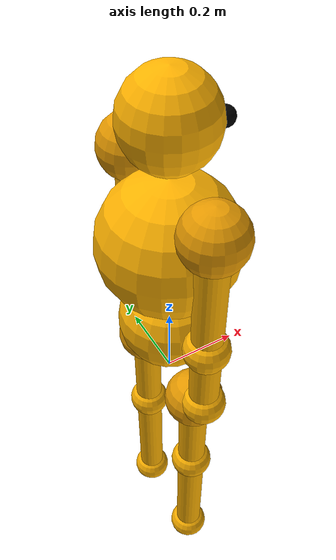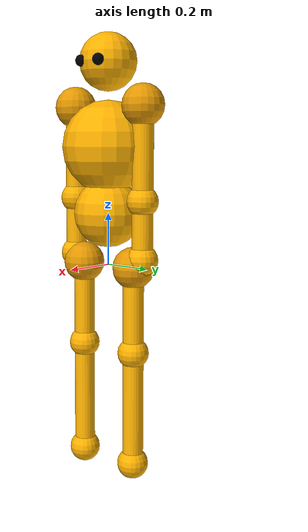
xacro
<?xml version="1.0"?>
<robot xmlns:xacro="http://www.ros.org/wiki/xacro" name="human">

    <!-- User-settable parameters (eg, xacro human-tpl.xacro id:=xyz) -->
    <xacro:property name="id" value="$(arg id)" />
    <xacro:property name="height" value="$(arg height)" />

    <!-- Parameters defaults -->
    <xacro:arg name="id" default="default" />
    <xacro:arg name="height" default="1.65" />

    <!-- human body proportions taken from https://www.thedrawingsource.com/figure-drawing-proportions.html -->
    <xacro:property name="size_unit" value="${height/7.5}" />
    <xacro:property name="head_radius" value="${size_unit/2}" />
    <xacro:property name="neck_length" value="${size_unit * 0.25}" />
    <xacro:property name="neck_shoulder_length" value="${size_unit*0.8}" />
    <xacro:property name="upperarm_length" value="${size_unit*1.6}" />
    <xacro:property name="forearm_length" value="${size_unit}" />
    <xacro:property name="torso_height" value="${size_unit*2.75}" />
    <xacro:property name="waist_length" value="${size_unit*1.2}" />
    <xacro:property name="tight_length" value="${size_unit*1.5}" />
    <xacro:property name="tibia_length" value="${size_unit*2}" />

    <xacro:property name="arm_radius" value="0.04" />

    <!-- Materials -->
    <material name="yellow-skin">
        <color rgba="1 0.7 0 1" />
    </material>

    <material name="yellow-skin-dark">
        <color rgba="0.9 0.6 0 1" />
    </material>

    <material name="black">
        <color rgba="0 0 0 1" />
    </material>

    <link name="body_${id}">
    </link>

    <link name="waist_${id}">
    </link>

    <link name="torso_${id}">
        <visual>
            <geometry>
                <sphere radius="${waist_length/2}"/>
            </geometry>
            <material name="yellow-skin" />
            <origin rpy="0 0 0" xyz="0 0 -${torso_height*2/3}" />
        </visual>
        <visual>
            <geometry>
                <sphere radius="${neck_shoulder_length}"/>
            </geometry>
            <material name="yellow-skin" />
            <origin rpy="0 0 0" xyz="0 0 -${torso_height/4}" />
        </visual>
    </link>

    <joint name="torso_${id}" type="fixed">
        <parent link="waist_${id}"/>
        <child link="torso_${id}"/>
        <origin rpy="0 0 0" xyz="0 0 ${torso_height}" />
    </joint>

    <joint name="waist_${id}" type="revolute">
        <axis xyz="0 1 0" />
        <limit effort="1000" lower="-.2" upper="1." velocity="0.5" />
        <parent link="body_${id}"/>
        <child link="waist_${id}"/>
        <origin rpy="0 0 0" xyz="0 0 0" />
    </joint>

    <link name="head_r_${id}">
    </link>
    <link name="head_y_${id}">
    </link>
    <link name="head_p_${id}">
    </link>

    <link name="head_${id}">
        <visual>
            <geometry>
                <sphere radius="${head_radius}"/>
            </geometry>
            <material name="yellow-skin" />
            <origin rpy="0 0 0" xyz="${-head_radius/2} 0 0" />
        </visual>
        <!-- eyes -->
        <visual>
            <geometry>
                <sphere radius="${head_radius/5}"/>
            </geometry>
            <material name="black" />
            <origin rpy="0 0 0" xyz="${head_radius * .9 - head_radius/2} ${2*head_radius/5} 0" />
        </visual>
        <visual>
            <geometry>
                <sphere radius="${head_radius/5}"/>
            </geometry>
            <material name="black" />
            <origin rpy="0 0 0" xyz="${head_radius * .9 - head_radius/2} -${2*head_radius/5} 0" />
        </visual>
    </link>
    <joint name="head_r_${id}" type="revolute">
        <axis xyz="1 0 0" />
        <limit effort="1000" lower="-1." upper="1." velocity="0.5" />
        <parent link="torso_${id}"/>
        <child link="head_r_${id}"/>
        <origin rpy="0 0 0" xyz="0 0 ${neck_length}" />
    </joint>
    <joint name="head_y_${id}" type="revolute">
        <axis xyz="0 0 1" />
        <limit effort="1000" lower="-1.4" upper="1.4" velocity="0.5" />
        <parent link="head_r_${id}"/>
        <child link="head_y_${id}"/>
        <origin rpy="0 0 0" xyz="0 0 0" />
    </joint>
    <joint name="head_p_${id}" type="revolute">
        <axis xyz="0 -1 0" />
        <limit effort="1000" lower="-1.5" upper="1.5" velocity="0.5" />
        <parent link="head_y_${id}"/>
        <child link="head_p_${id}"/>
        <origin rpy="0 0 0" xyz="0 0 0" />
    </joint>

    <joint name="head_${id}" type="fixed">
        <parent link="head_p_${id}"/>
        <child link="head_${id}"/>
        <origin rpy="0 0 0" xyz="${head_radius/2} 0 ${head_radius}" />
    </joint>

    <xacro:macro name="limb_segment" params="name reflect length parent attachment_origin attachment_rotation link_name link_axis link_min_limit link_max_limit">
        <link name="${name}">
            <visual>
                <geometry>
                    <cylinder length="${length}" radius="${arm_radius}"/>
                </geometry>
                <material name="yellow-skin" />
                <origin rpy="0 0 0" xyz="0 0 -${length/2}" />
            </visual>
            <visual>
                <geometry>
                    <sphere radius="${1.5 * arm_radius}"/>
                </geometry>
                <material name="yellow-skin" />
                <origin rpy="0 0 0" xyz="0 0 -${length}" />
            </visual>
        </link>

        <joint name="${link_name}" type="revolute">
            <axis xyz="${link_axis}" />
            <limit effort="1000" lower="${link_min_limit}" upper="${link_max_limit}" velocity="0.5" />
            <parent link="${parent}"/>
            <child link="${name}"/>
            <origin rpy="${attachment_rotation}" xyz="${attachment_origin}" />
        </joint>
    </xacro:macro>

    <xacro:macro name="arm" params="suffix parent reflect">
        <link name="${suffix}_y_shoulder_${id}">
            <visual>
            <geometry>
                <sphere radius="${2 * arm_radius}"/>
            </geometry>
            <material name="yellow-skin-dark" />
            <origin rpy="0 0 0" xyz="0 0 0" />
        </visual>
        </link>
        <joint name="${suffix}_y_shoulder_${id}" type="revolute">
            <axis xyz="0 0 ${reflect * -1}" />
            <limit effort="1000" lower="-1.7" upper="1.1" velocity="0.5" />
            <parent link="${parent}"/>
            <child link="${suffix}_y_shoulder_${id}"/>
            <origin rpy="0 0 0" xyz="0 ${reflect * neck_shoulder_length} 0" />
        </joint>
        <link name="${suffix}_p_shoulder_${id}">
        </link>
        <joint name="${suffix}_p_shoulder_${id}" type="revolute">
            <axis xyz="${reflect} 0 0" />
            <limit effort="1000" lower="-0.4" upper="3.3" velocity="0.5" />
            <parent link="${suffix}_y_shoulder_${id}"/>
            <child link="${suffix}_p_shoulder_${id}"/>
            <origin rpy="0 0 0" xyz="0 0 0" />
        </joint>
        <xacro:limb_segment name="${suffix}_upperarm_${id}"
                     length = "${upperarm_length}"
                     reflect="${reflect}"
                     parent="${suffix}_p_shoulder_${id}"
                     attachment_origin="0 0 0"
                     attachment_rotation="0 0 0"
                     link_name="${suffix}_r_shoulder_${id}"
                     link_axis="0 0 ${reflect}"
                     link_min_limit="-1.7"
                     link_max_limit="1.5" />
         <xacro:limb_segment name="${suffix}_forearm_${id}"
                     length = "${forearm_length}"
                     reflect="${reflect}"
                     parent="${suffix}_upperarm_${id}"
                     attachment_origin="0 0 -${upperarm_length}"
                     attachment_rotation="0 0 0"
                     link_name="${suffix}_elbow_${id}"
                     link_axis="0 -1 0"
                     link_min_limit="0"
                     link_max_limit="2.5" />

        <link name="${suffix}_wrist_${id}">
        </link>
        <joint name="${suffix}_wrist_${id}" type="fixed">
            <parent link="${suffix}_forearm_${id}"/>
            <child link="${suffix}_wrist_${id}"/>
            <origin rpy="0 0 0" xyz="0 0 -${forearm_length}" />
        </joint>

    </xacro:macro>

    <xacro:arm suffix="l" reflect="1" parent="torso_${id}" />
    <xacro:arm suffix="r" reflect="-1" parent="torso_${id}" />

    <xacro:macro name="leg" params="suffix parent reflect">
        <link name="${suffix}_y_hip_${id}">
            <visual>
            <geometry>
                <sphere radius="${2 * arm_radius}"/>
            </geometry>
            <material name="yellow-skin-dark" />
            <origin rpy="0 0 0" xyz="0 0 0" />
        </visual>
        </link>
        <joint name="${suffix}_y_hip_${id}" type="revolute">
            <axis xyz="0 0 -1" />
            <limit effort="1000" lower="-.1" upper="0.6" velocity="0.5" />
            <parent link="${parent}"/>
            <child link="${suffix}_y_hip_${id}"/>
            <origin rpy="0 0 0" xyz="0 ${reflect * waist_length/2} 0" />
        </joint>
        <xacro:limb_segment name="${suffix}_hip_${id}"
                     length = "${tight_length}"
                     reflect="${reflect}"
                     parent="${suffix}_y_hip_${id}"
                     attachment_origin="0 0 0"
                     attachment_rotation="0 0 0"
                     link_name="${suffix}_p_hip_${id}"
                     link_axis="0 -1 0"
                     link_min_limit="-.4"
                     link_max_limit="0.7" />
        <xacro:limb_segment name="${suffix}_knee_${id}"
                     length = "${tibia_length}"
                     reflect="${reflect}"
                     parent="${suffix}_hip_${id}"
                     attachment_origin="0 0 -${tight_length}"
                     attachment_rotation="0 0 0"
                     link_name="${suffix}_knee_${id}"
                     link_axis="0 -1 0"
                     link_min_limit="-2.5"
                     link_max_limit="0" />
        <link name="${suffix}_ankle_${id}">
        </link>
        <joint name="${suffix}_ankle_${id}" type="fixed">
            <parent link="${suffix}_knee_${id}"/>
            <child link="${suffix}_ankle_${id}"/>
            <origin rpy="0 0 0" xyz="0 0 -${tibia_length}" />
        </joint>

    </xacro:macro>

    <xacro:leg suffix="l" reflect="1" parent="body_${id}" />
    <xacro:leg suffix="r" reflect="-1" parent="body_${id}" />

</robot>
